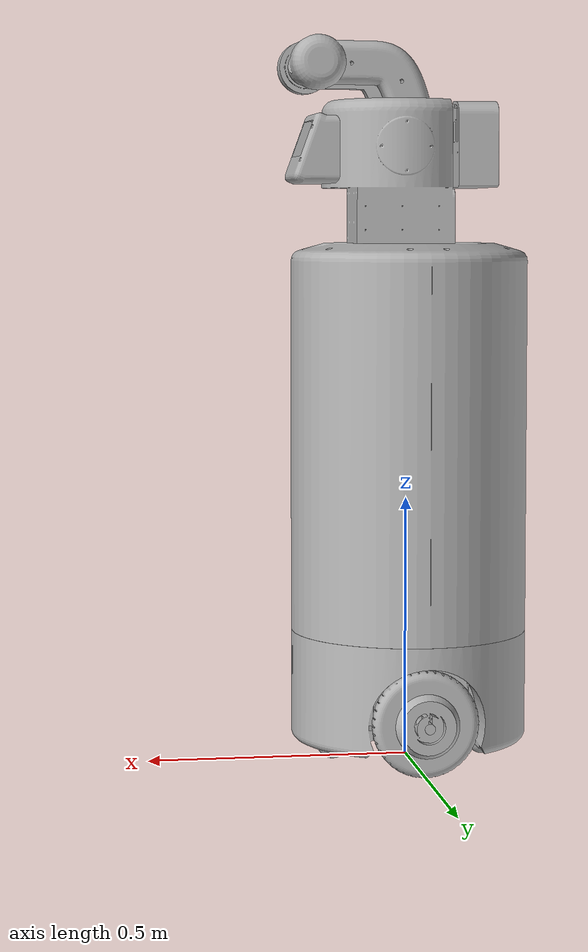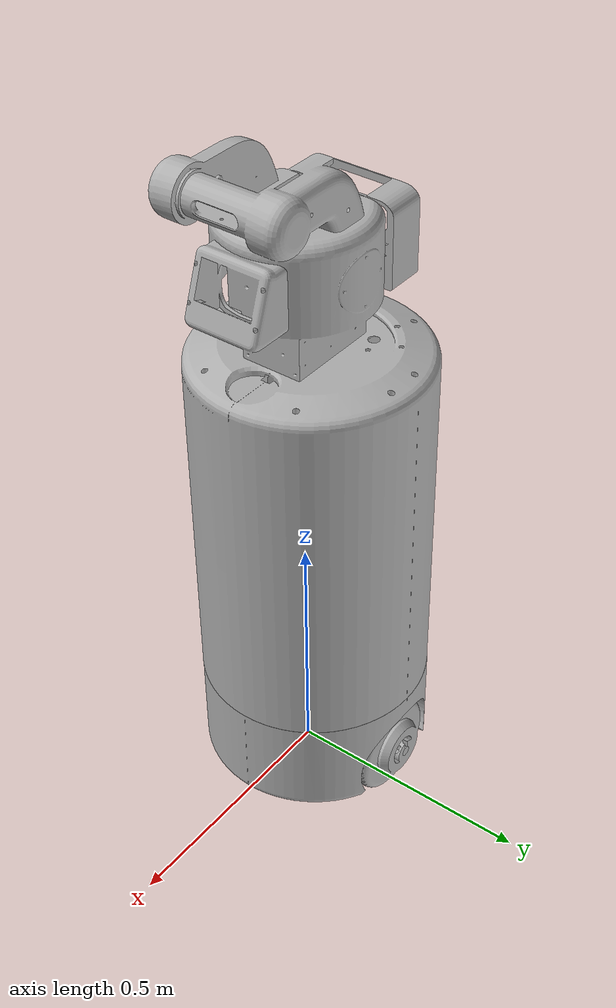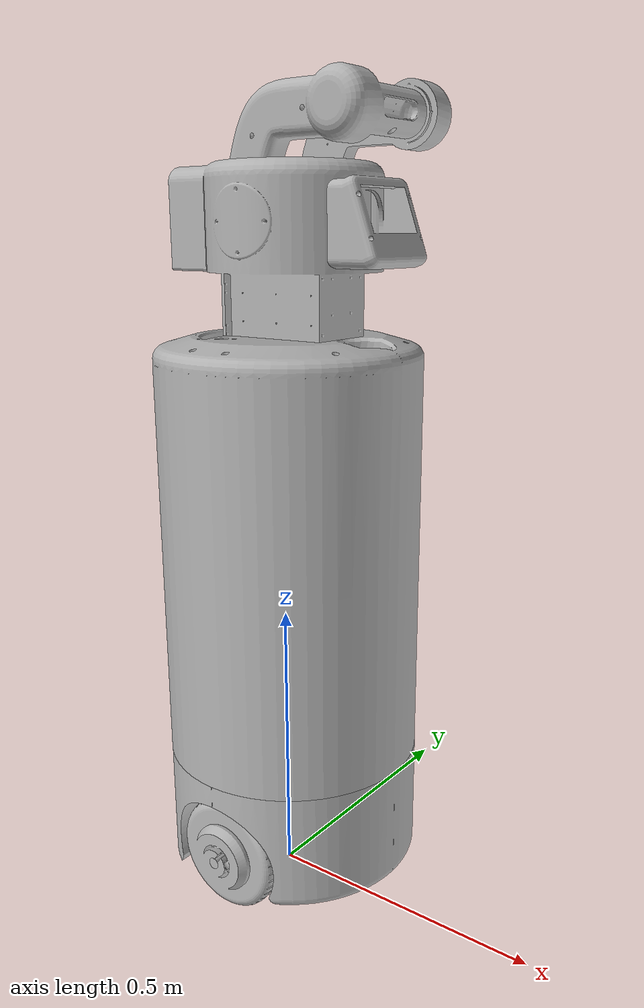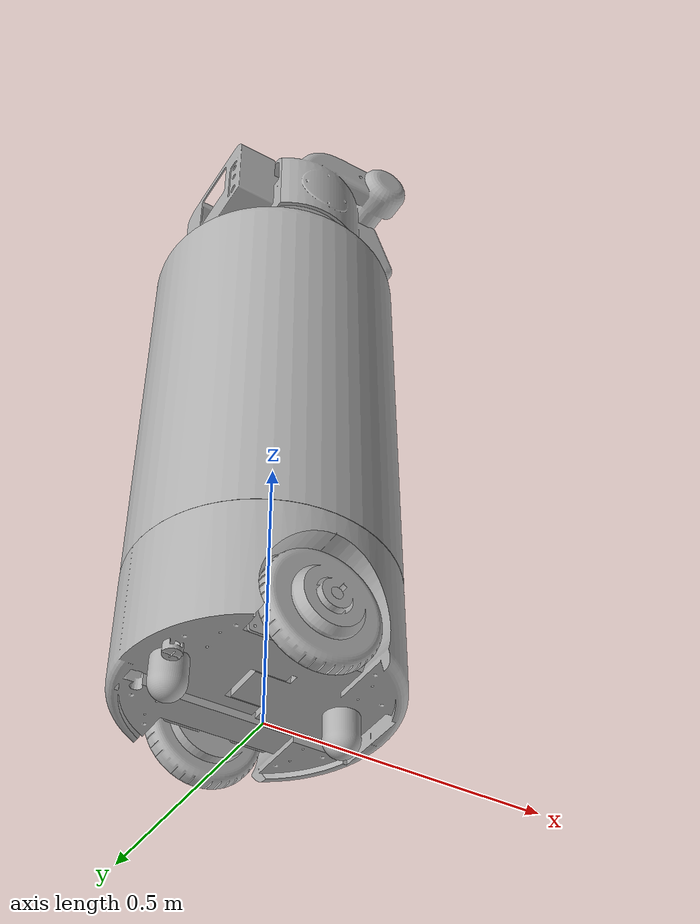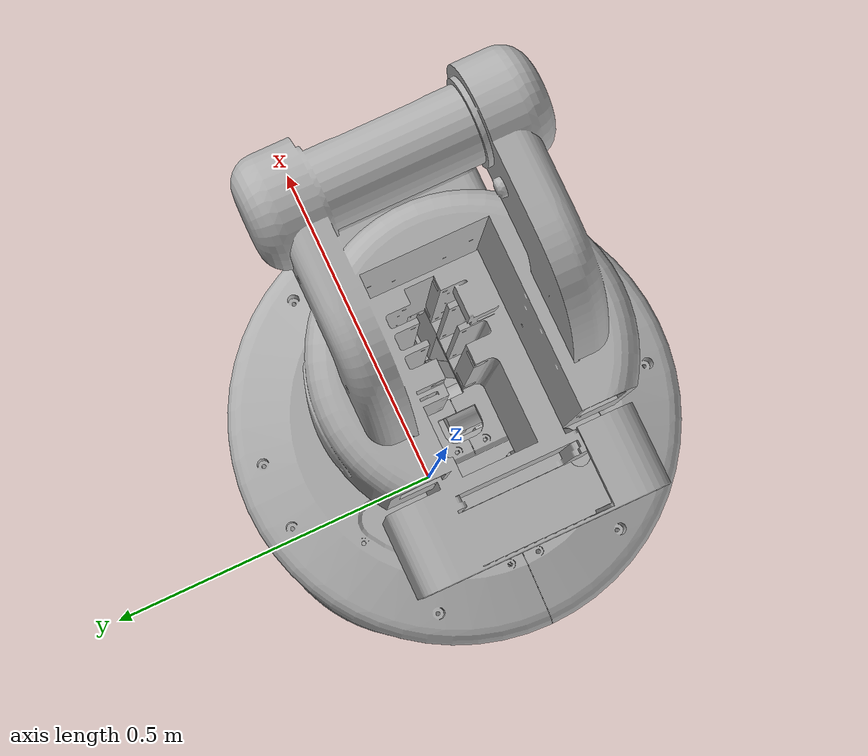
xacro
<?xml version="1.0" ?>
<robot name="urdf" xmlns:xacro="http://www.ros.org/wiki/xacro">

<xacro:include filename="$(find urdf_description)/urdf/materials.xacro" />
<xacro:include filename="$(find urdf_description)/urdf/urdf.trans" />
<xacro:include filename="$(find urdf_description)/urdf/urdf.gazebo" />
<xacro:include filename="$(find urdf_description)/gazebo/urdf_detailed_materials.gazebo" />
<xacro:include filename="$(find urdf_description)/gazebo/urdf_detailed_physics.gazebo" />
<xacro:include filename="$(find urdf_description)/gazebo/urdf_detailed_plugins.gazebo" />

<link name="base_link">
  <inertial>
    <origin rpy="0 0 0" xyz="0.006896284190165957 0.019607147279650704 0.14348524088836095"/>
    <mass value="13.487823737790368"/>
    <inertia ixx="0.230054" ixy="0.000177" ixz="-0.001714" iyy="0.319075" iyz="-8.5e-05" izz="0.449814"/>
  </inertial>
  <visual>
    <origin rpy="0 0 0" xyz="0 0 0"/>
    <geometry>
      <mesh filename="package://urdf_description/meshes/base_link.stl" scale="0.001 0.001 0.001"/>
    </geometry>
    <material name="silver"/>
  </visual>
  <collision>
    <origin rpy="0 0 0" xyz="0 0 0"/>
    <geometry>
      <mesh filename="package://urdf_description/meshes/base_link.stl" scale="0.001 0.001 0.001"/>
    </geometry>
  </collision>
</link>

<link name="rightwheel_1">
  <inertial>
    <origin rpy="0 0 0" xyz="-4.3086201495642126e-05 0.04910413098013125 -3.5306191575323886e-05"/>
    <mass value="1.726156836217546"/>
    <inertia ixx="0.004183" ixy="-3e-06" ixz="1e-06" iyy="0.007094" iyz="-2e-06" izz="0.004183"/>
  </inertial>
  <visual>
    <origin rpy="0 0 0" xyz="0.001 0.207 -0.1"/>
    <geometry>
      <mesh filename="package://urdf_description/meshes/rightwheel_1.stl" scale="0.001 0.001 0.001"/>
    </geometry>
    <material name="silver"/>
  </visual>
  <collision>
    <origin rpy="0 0 0" xyz="0.001 0.207 -0.1"/>
    <geometry>
      <mesh filename="package://urdf_description/meshes/rightwheel_1.stl" scale="0.001 0.001 0.001"/>
    </geometry>
  </collision>
</link>

<link name="leftwheel_1">
  <inertial>
    <origin rpy="0 0 0" xyz="-1.4071078713470903e-05 -0.04910432960929098 -5.388889840672595e-05"/>
    <mass value="1.7280872851640348"/>
    <inertia ixx="0.004186" ixy="1e-06" ixz="0.0" iyy="0.007099" iyz="3e-06" izz="0.004187"/>
  </inertial>
  <visual>
    <origin rpy="0 0 0" xyz="0.001 -0.247 -0.1"/>
    <geometry>
      <mesh filename="package://urdf_description/meshes/leftwheel_1.stl" scale="0.001 0.001 0.001"/>
    </geometry>
    <material name="silver"/>
  </visual>
  <collision>
    <origin rpy="0 0 0" xyz="0.001 -0.247 -0.1"/>
    <geometry>
      <mesh filename="package://urdf_description/meshes/leftwheel_1.stl" scale="0.001 0.001 0.001"/>
    </geometry>
  </collision>
</link>

<link name="mainbody_1">
  <inertial>
    <origin rpy="0 0 0" xyz="-0.21747001443364508 -0.0005671374063579392 0.36936745987457287"/>
    <mass value="46.397497082791276"/>
    <inertia ixx="3.074402" ixy="-7e-06" ixz="0.002501" iyy="2.968327" iyz="-0.000517" izz="1.818192"/>
  </inertial>
  <visual>
    <origin rpy="0 0 0" xyz="-0.224 -0.0198 -0.25"/>
    <geometry>
      <mesh filename="package://urdf_description/meshes/mainbody_1.stl" scale="0.001 0.001 0.001"/>
    </geometry>
    <material name="silver"/>
  </visual>
  <collision>
    <origin rpy="0 0 0" xyz="-0.224 -0.0198 -0.25"/>
    <geometry>
      <mesh filename="package://urdf_description/meshes/mainbody_1.stl" scale="0.001 0.001 0.001"/>
    </geometry>
  </collision>
</link>

<link name="fornt_caster_1">
  <inertial>
    <origin rpy="0 0 0" xyz="-0.025000797505036365 -3.9898639947466563e-16 -0.03045808605341238"/>
    <mass value="0.4573656248802166"/>
    <inertia ixx="0.000244" ixy="-0.0" ixz="0.0" iyy="0.000244" iyz="0.0" izz="0.000192"/>
  </inertial>
  <visual>
    <origin rpy="0 0 0" xyz="-0.171 -0.02 -0.07"/>
    <geometry>
      <mesh filename="package://urdf_description/meshes/fornt_caster_1.stl" scale="0.001 0.001 0.001"/>
    </geometry>
    <material name="silver"/>
  </visual>
  <collision>
    <origin rpy="0 0 0" xyz="-0.171 -0.02 -0.07"/>
    <geometry>
      <mesh filename="package://urdf_description/meshes/fornt_caster_1.stl" scale="0.001 0.001 0.001"/>
    </geometry>
  </collision>
</link>

<link name="back_caster_1">
  <inertial>
    <origin rpy="0 0 0" xyz="0.024999202494963707 -1.0061396160665481e-16 -0.030458086053412395"/>
    <mass value="0.4573656248802168"/>
    <inertia ixx="0.000244" ixy="0.0" ixz="0.0" iyy="0.000244" iyz="0.0" izz="0.000192"/>
  </inertial>
  <visual>
    <origin rpy="0 0 0" xyz="0.173 -0.02 -0.07"/>
    <geometry>
      <mesh filename="package://urdf_description/meshes/back_caster_1.stl" scale="0.001 0.001 0.001"/>
    </geometry>
    <material name="silver"/>
  </visual>
  <collision>
    <origin rpy="0 0 0" xyz="0.173 -0.02 -0.07"/>
    <geometry>
      <mesh filename="package://urdf_description/meshes/back_caster_1.stl" scale="0.001 0.001 0.001"/>
    </geometry>
  </collision>
</link>

<link name="head_1">
  <inertial>
    <origin rpy="0 0 0" xyz="-0.0591263474424927 -0.006383264290873913 0.17273572361437428"/>
    <mass value="5.261861266896012"/>
    <inertia ixx="0.076159" ixy="0.001014" ixz="-0.017983" iyy="0.096387" iyz="0.001418" izz="0.073416"/>
  </inertial>
  <visual>
    <origin rpy="0 0 0" xyz="-0.104 -0.0195 -0.99"/>
    <geometry>
      <mesh filename="package://urdf_description/meshes/head_1.stl" scale="0.001 0.001 0.001"/>
    </geometry>
    <material name="silver"/>
  </visual>
  <collision>
    <origin rpy="0 0 0" xyz="-0.104 -0.0195 -0.99"/>
    <geometry>
      <mesh filename="package://urdf_description/meshes/head_1.stl" scale="0.001 0.001 0.001"/>
    </geometry>
  </collision>
</link>

<link name="drive_1">
  <inertial>
    <origin rpy="0 0 0" xyz="-0.0704929590638793 0.13000000000000017 0.149860425468055"/>
    <mass value="10.196776322164792"/>
    <inertia ixx="0.123658" ixy="-0.0" ixz="-0.003995" iyy="0.034068" iyz="-0.0" izz="0.117818"/>
  </inertial>
  <visual>
    <origin rpy="0 0 0" xyz="-0.10147 0.11 -0.06"/>
    <geometry>
      <mesh filename="package://urdf_description/meshes/drive_1.stl" scale="0.001 0.001 0.001"/>
    </geometry>
    <material name="silver"/>
  </visual>
  <collision>
    <origin rpy="0 0 0" xyz="-0.10147 0.11 -0.06"/>
    <geometry>
      <mesh filename="package://urdf_description/meshes/drive_1.stl" scale="0.001 0.001 0.001"/>
    </geometry>
  </collision>
</link>

<joint name="right_motor" type="continuous">
  <origin rpy="0 0 0" xyz="-0.001 -0.207 0.1"/>
  <parent link="base_link"/>
  <child link="rightwheel_1"/>
  <axis xyz="-0.0 -1.0 0.0"/>
</joint>

<joint name="left_motor" type="continuous">
  <origin rpy="0 0 0" xyz="-0.001 0.247 0.1"/>
  <parent link="base_link"/>
  <child link="leftwheel_1"/>
  <axis xyz="0.0 1.0 0.0"/>
</joint>

<joint name="base_main_link" type="fixed">
  <origin rpy="0 0 0" xyz="0.224 0.0198 0.25"/>
  <parent link="base_link"/>
  <child link="mainbody_1"/>
</joint>

<joint name="caster_fornt_joint" type="fixed">
  <origin rpy="0 0 0" xyz="0.171 0.02 0.07"/>
  <parent link="base_link"/>
  <child link="fornt_caster_1"/>
</joint>

<joint name="caster_back_joint" type="fixed">
  <origin rpy="0 0 0" xyz="-0.173 0.02 0.07"/>
  <parent link="base_link"/>
  <child link="back_caster_1"/>
</joint>

<joint name="main_head_joint" type="fixed">
  <origin rpy="0 0 0" xyz="-0.12 -0.0003 0.74"/>
  <parent link="mainbody_1"/>
  <child link="head_1"/>
</joint>

<joint name="Rigid9" type="fixed">
  <origin rpy="0 0 0" xyz="0.10147 -0.11 0.06"/>
  <parent link="base_link"/>
  <child link="drive_1"/>
</joint>

</robot>

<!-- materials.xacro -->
<robot name="urdf" xmlns:xacro="http://www.ros.org/wiki/xacro" >

<material name="silver">
  <color rgba="0.700 0.700 0.700 1.000"/>
</material>

</robot>

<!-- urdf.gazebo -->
<robot name="urdf" xmlns:xacro="http://www.ros.org/wiki/xacro" >

<xacro:property name="body_color" value="Gazebo/Silver" />

<gazebo>
  <plugin filename="libgazebo_ros_control.so" name="control"/>
</gazebo>
<gazebo reference="base_link">
  <material>${body_color}</material>
  <mu1>0.2</mu1>
  <mu2>0.2</mu2>
  <selfCollide>true</selfCollide>
  <gravity>true</gravity>
</gazebo>

<gazebo reference="rightwheel_1">
  <material>${body_color}</material>
  <mu1>0.2</mu1>
  <mu2>0.2</mu2>
  <selfCollide>true</selfCollide>
</gazebo>

<gazebo reference="leftwheel_1">
  <material>${body_color}</material>
  <mu1>0.2</mu1>
  <mu2>0.2</mu2>
  <selfCollide>true</selfCollide>
</gazebo>

<gazebo reference="mainbody_1">
  <material>${body_color}</material>
  <mu1>0.2</mu1>
  <mu2>0.2</mu2>
  <selfCollide>true</selfCollide>
</gazebo>

<gazebo reference="fornt_caster_1">
  <material>${body_color}</material>
  <mu1>0.2</mu1>
  <mu2>0.2</mu2>
  <selfCollide>true</selfCollide>
</gazebo>

<gazebo reference="back_caster_1">
  <material>${body_color}</material>
  <mu1>0.2</mu1>
  <mu2>0.2</mu2>
  <selfCollide>true</selfCollide>
</gazebo>

<gazebo reference="head_1">
  <material>${body_color}</material>
  <mu1>0.2</mu1>
  <mu2>0.2</mu2>
  <selfCollide>true</selfCollide>
</gazebo>

<gazebo reference="drive_1">
  <material>${body_color}</material>
  <mu1>0.2</mu1>
  <mu2>0.2</mu2>
  <selfCollide>true</selfCollide>
</gazebo>

</robot>
